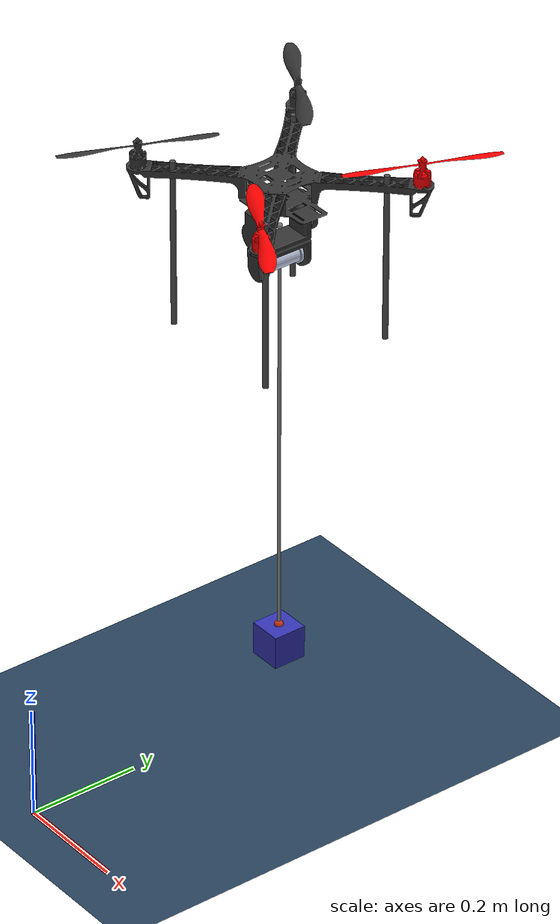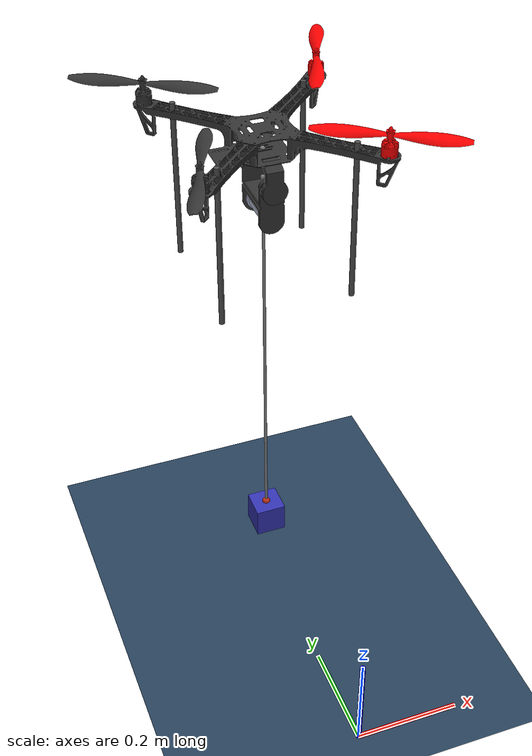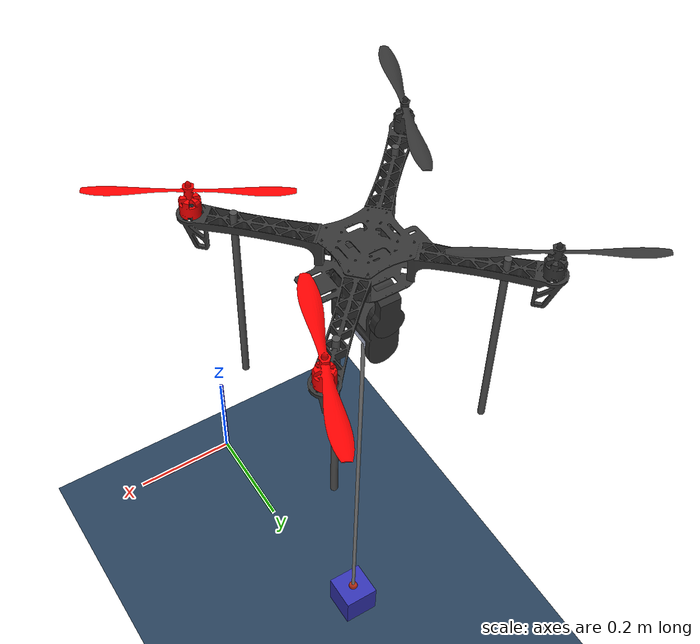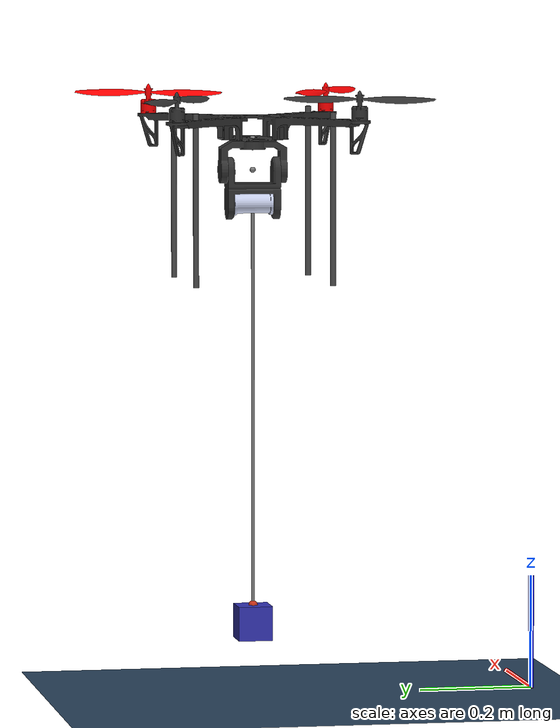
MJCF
<mujoco model="f450rope_combined">
    <option timestep="0.001" integrator="RK4" density="1.225" viscosity="1.8e-5"/>

     <compiler meshdir="meshes/" />

	<visual>
		<rgba haze="0.2 0.3 0.4 1"/>  <!-- 天空颜色与地面rgb1一致 -->
        <global azimuth="-20" elevation="-20" ellipsoidinertia="true"/>
    </visual>

<default>
    <default class="d435i">
      <material specular="0" shininess="0.25"/>
      <default class="visual">
        <geom group="2" type="mesh" contype="0" conaffinity="0" mass="0"/>
      </default>
      <default class="collision">
        <geom group="3" type="mesh" mass="0"/>
      </default>
    </default>
  </default>

    <asset>
        <texture name="groundplane_tex" type="2d" builtin="checker" rgb1="0.2 0.3 0.4" rgb2="0.1 0.2 0.3"
                 mark="edge" markrgb="0.8 0.8 0.8" width="300" height="300"/>

        <material name="groundplane_mat" texture="groundplane_tex" texuniform="true" texrepeat="5 5" reflectance="0.2"/>

        <mesh name="base_link" file="base_link.STL"/>
        <mesh name="p1" file="p1.STL"/>
        <mesh name="p2" file="p2.STL"/>
        <mesh name="p3" file="p3.STL"/>
        <mesh name="p4" file="p4.STL"/>
        <mesh name="armz" file="armz.STL"/>
        <mesh name="army" file="army.STL"/>
        <mesh name="winch" file="winch.STL"/>

		 <!-- 添加天空盒纹理：设置为你需要的颜色（例如天蓝色渐变） -->
			<texture type="skybox" builtin="gradient"
           rgb1="0.5 0.7 0.9"
           rgb2="0.3 0.5 0.7"
           width="512" height="512"/>

		<!-- 相机相关建模 -->
    <material class="d435i" name="Black_Acrylic" rgba="0.070360 0.070360 0.070360 1"/>
    <material class="d435i" name="Cameras_Gray" rgba="0.296138 0.296138 0.296138 1"/>
    <material class="d435i" name="IR_Emitter_Lens" rgba="0.287440 0.665387 0.327778 1"/>
    <material class="d435i" name="IR_Lens" rgba="0.035601 0.035601 0.035601 1"/>
    <material class="d435i" name="IR_Rim" rgba="0.799102 0.806952 0.799103 1"/>
    <material class="d435i" name="Metal_Casing" rgba="1 1 1 1"/>
    <material class="d435i" name="RGB_Pupil" rgba="0.087140 0.002866 0.009346 1"/>

    <mesh file="d435i_0.obj"/>
    <mesh file="d435i_1.obj"/>
    <mesh file="d435i_2.obj"/>
    <mesh file="d435i_3.obj"/>
    <mesh file="d435i_4.obj"/>
    <mesh file="d435i_5.obj"/>
    <mesh file="d435i_6.obj"/>
    <mesh file="d435i_7.obj"/>
    <mesh file="d435i_8.obj"/>

    </asset>

    <worldbody>

        <!-- 地面 -->
        <geom name="floor" type="plane" pos="0 0 0" size="0 0 0.05" material="groundplane_mat" friction="1.4 0.5 0.8"/>

        <!-- 光照 -->
        <light directional="true" pos="0 0 1.5" dir="0 0 -1" diffuse="0.6 0.6 0.6" ambient="0.3 0.3 0.3"/>

        <!-- 场景相机 -->
		<!-- 修改后的场景相机 -->
		<camera name="world_camera" mode="trackcom" pos="0 -1.8 1.2" xyaxes="1 0 0 0 0.9 0.1" fovy="75"/>

		<!-- 世界坐标系FLU三轴小棍, 长0.2m, 半径0.005m -->
		<body name="world_axis" pos="0 0 0">
			<!-- X轴: 红色，正方向 -->
			<geom name="axis_x" type="cylinder" fromto="0 0 0  0.2 0 0" size="0.005" rgba="1 0 0 1"/>
			<!-- Y轴: 绿色，正方向 -->
			<geom name="axis_y" type="cylinder" fromto="0 0 0  0 0.2 0" size="0.005" rgba="0 1 0 1"/>
			<!-- Z轴: 蓝色，正方向 -->
			<geom name="axis_z" type="cylinder" fromto="0 0 0  0 0 0.2" size="0.005" rgba="0 0 1 1"/>
		</body>

		钻框结构：平面垂直于x轴（与yz平面共面），内宽0.8m、内高0.8m
			左竖杆：位于 y = -0.40，细长方向沿 z
				  <!-- pos="-0.015 -0.40 0" -->
				  <!-- size="0.015 0.015 0.40" -->
				  <!-- rgba="0.9 0.3 0.1 1" -->
			右竖杆：位于 y = +0.40
				  <!-- pos="-0.015 0.40 0" -->
				  <!-- size="0.015 0.015 0.40" -->
				  <!-- rgba="0.9 0.3 0.1 1" -->
			上横杆：位于 z = +0.40，细长方向沿 y
				  <!-- pos="-0.015 0 0.40" -->
				  <!-- size="0.015 0.40 0.015" -->
				  <!-- rgba="0.9 0.3 0.1 1" -->
			下横杆：位于 z = -0.40
				  <!-- pos="-0.015 0 -0.40" -->
				  <!-- size="0.015 0.40 0.015" -->
				  <!-- rgba="0.9 0.3 0.1 1" -->

				<!-- 实验3-减速过框：  钻框结构：平面垂直于x轴（与yz平面共面），内宽0.8m、内高1m -->
			左竖杆：位于 y = -0.30，细长方向沿 z
				  <!-- pos="-0.015 -0.40 0" -->
				  <!-- size="0.015 0.015 0.50" -->
				  <!-- rgba="0.9 0.3 0.1 1" -->
			右竖杆：位于 y = +0.30
				  <!-- pos="-0.015 0.40 0" -->
				  <!-- size="0.015 0.015 0.50" -->
				  <!-- rgba="0.9 0.3 0.1 1" -->
			上横杆：位于 z = +0.40，细长方向沿 y
				  <!-- pos="-0.015 0 0.50" -->
				  <!-- size="0.015 0.40 0.015" -->
				  <!-- rgba="0.9 0.3 0.1 1" -->
			下横杆：位于 z = -0.40
				  <!-- pos="-0.015 0 -0.50" -->
				  <!-- size="0.015 0.40 0.015" -->
				  <!-- rgba="0.9 0.3 0.1 1" -->

        <!-- 无人机1主体 -->
        <body name="base_link" pos="0 0.5 0.98"  euler="0 0 0">
            <freejoint/>
            <geom type="mesh" mesh="base_link" mass="1.3" rgba="0.2  0.2  0.2 1"/>

			<site name="imu" />
            <site name="actuation"/>

			<!-- D435i 相机安装在 base_link 下方 -->

				<!-- 可选：用于检测或传感 site -->

            <!-- 支架 -->
			<body name="leg1" pos="0.12 0.12 -0.1">
               	<geom type="cylinder" size="0.005 0.15" mass="0.02" rgba="0.3 0.3 0.3 1"/>
            </body>
            <body name="leg2" pos="0.12 -0.12 -0.1">
                <geom type="cylinder" size="0.005 0.15" mass="0.02" rgba="0.3 0.3 0.3 1"/>
            </body>
            <body name="leg3" pos="-0.12 0.12 -0.1">
                <geom type="cylinder" size="0.005 0.15" mass="0.02" rgba="0.3 0.3 0.3 1"/>
            </body>
            <body name="leg4" pos="-0.12 -0.12 -0.1">
                <geom type="cylinder" size="0.005 0.15" mass="0.02" rgba="0.3 0.3 0.3 1"/>
            </body>

			<!-- 桨叶 -->
			<body name="p1" pos="0.1591 0.1591 0.03775">
				<geom type="mesh" mesh="p1" mass="0.014" rgba="1 0 0 1"/>
				<joint name="pz1" type="hinge" axis="0 0 1" pos="0 0 0" damping="0.01"/>
				<site name="motor1_site" />
			</body>

			<body name="p2" pos="0.1591 -0.1591 0.03775">
				<geom type="mesh" mesh="p2" mass="0.014" rgba="1 0 0 1"/>
				<joint name="pz2" type="hinge" axis="0 0 1" pos="0 0 0" damping="0.01"/>
				<site name="motor2_site" />
			</body>

			<body name="p3" pos="-0.1591 -0.1591 0.03775">
				<geom type="mesh" mesh="p3" mass="0.014" rgba="0.2  0.2  0.2 1"/>
				<joint name="pz3" type="hinge" axis="0 0 1" pos="0 0 0" damping="0.01"/>
				<site name="motor3_site" />
			</body>

			<body name="p4" pos="-0.1591 0.1591 0.03775">
				<geom type="mesh" mesh="p4" mass="0.014" rgba="0.2  0.2  0.2 1"/>
				<joint name="pz4" type="hinge" axis="0 0 1" pos="0 0 0" damping="0.01"/>
				<site name="motor4_site"/>
			</body>

					<!-- 机械臂 -->
					<body name="armz" pos="0 0 0">
					<site name="s1_site"/>

						<geom type="mesh" mesh="armz" mass="0.118" rgba="0.2  0.2  0.2 1"/>
						<joint name="armzz" type="hinge" axis="0 0 1" pos="0 0 0" damping="0.01"/>
						<site name="armz_force_site" pos="0 0 0" size="0.005" rgba="1 0 0 1"/>

						<body name="army" pos="0 0 -0.05475" euler="0 0 0">

							<site name="s2_site"/>

							<geom type="mesh" mesh="army" mass="0.161" rgba="0.2  0.2  0.2 1"/>
							<joint name="armyy" type="hinge" axis="0 1 0" pos="0 0 0" damping="0.01"/>

							<body name="winch" pos="0 0 -0.05889" euler="0 0 0">
								<site name="s3_site"/>
								<geom type="mesh" mesh="winch" mass="0.0642" rgba="0.79 0.82 0.93 1"/>
								<site name="hook" pos="0 0 0" size="0.008" rgba="0 0 1 1"/>
							</body>
						</body>
					</body>
        </body>

        <!-- 负载 -->
        <body name="weight" pos="0 .5 0.13">
			<freejoint/>
			<geom type="box" size=".03 .03 .03" mass="0.24" rgba=".2 .2 .7 1"/>
			<site name="pulley" pos="0 0 0.03" size="0.008" type="sphere" rgba="0.8 0.2 0.1 1"/>
		</body>

    </worldbody>

<!-- 50-10000，越小绳弹性越大 -->
    <tendon>
        <spatial springlength="0 1.15" stiffness="500">
            <site site="pulley"/>
            <site site="hook"/>
        </spatial>
    </tendon>

	<compiler meshdir="meshes/" discardvisual="false" autolimits="true"/>

<actuator>
		<!-- 无人机各桨输入 -->
		<motor ctrlrange="0 1" gear="0 0 8.25 0 0 0.1452" site="motor1_site" name="motor1"/>
		<motor ctrlrange="0 1" gear="0 0 8.25 0 0  -0.1452" site="motor2_site" name="motor2"/>
		<motor ctrlrange="0 1" gear="0 0 8.25 0 0 0.1452" site="motor3_site" name="motor3"/>
		<motor ctrlrange="0 1" gear="0 0 8.25 0 0  -0.1452" site="motor4_site" name="motor4"/>

		 <!-- 新增的机械臂关节执行器 -->
		<motor name="armz_motor" joint="armzz" ctrlrange="-1 1" gear="0.2"/>
		<motor name="army_motor" joint="armyy" ctrlrange="-1 1" gear="0.2"/>

</actuator>

    <sensor>
        <!-- UAV传感器  -->
		<!-- 机体角速度(ωx,ωy,ωz) - 对应论文中ω⁰ -->
		<gyro name="body_gyro" site="imu"/>
		<!-- 机体位置(x,y,z) - 对应论文中p⁰ -->
		<framepos name="imu_pos" objtype="site" objname="imu"/>
		 <!-- 机体线速度(vx,vy,vz) - 对应论文中ṗ⁰ -->
		<!-- 世界坐标系下的线速度 -->
		<framelinvel name="world_vel" objtype="site" objname="imu"/>
		<!-- 机体线加速度(ax,ay,az) -->
		<accelerometer name="body_linacc" site="imu"/>
		<!-- 机体在世界坐标系下的加速度 -->
		<framelinacc name="fram_linacc" objtype="site" objname="imu" />
		<!-- 机体四元数姿态 - 对应论文中R⁰ -->
		<framequat name="body_quat" objtype="site" objname="imu"/>

		<!-- ========== 机械臂关节传感器 ========== -->
		<!-- 用于机械臂控制，对应论文中的α₁, α₂ -->

		<!-- 第一关节角度α₁(绕z轴旋转) -->
		<jointpos name="armz_pos" joint="armzz"/>
		<!-- 第二关节角度α₂(绕y轴旋转) -->
		<jointpos name="army_pos" joint="armyy"/>
		<!-- 第一关节角速度α̇₁ -->
		<jointvel name="armz_vel" joint="armzz"/>
		<!-- 第二关节角速度α̇₂ -->
		<jointvel name="army_vel" joint="armyy"/>

		<!-- ========== 绳索几何传感器 ========== -->
		<!-- 用于计算摆角θₓ,θᵧ，对应论文中的绳索方向向量qc -->
		<!-- 绳索上端点位置(机械臂末端) -->
		<framepos name="hook_pos" objtype="site" objname="hook"/>
		<!-- 绳索下端点位置(重物连接点) -->
		<framepos name="pulley_pos" objtype="site" objname="pulley"/>

		<!-- 新增：hook 和 pulley 的绝对速度传感器 -->
        <framelinvel name="hook_vel" objtype="site" objname="hook"/>
        <framelinvel name="pulley_vel" objtype="site" objname="pulley"/>

		<!-- 悬挂重力传感器  远古后续版本启用-->
    </sensor>

	<contact>
        <!-- 禁掉整棵 bodyA 与 bodyB 的所有碰撞 -->
        <exclude body1="armz" body2="base_link"/>
		<exclude body1="armz" body2="army"/>
        <!-- 或者只禁掉两个具体 geom -->
    </contact>

</mujoco>
